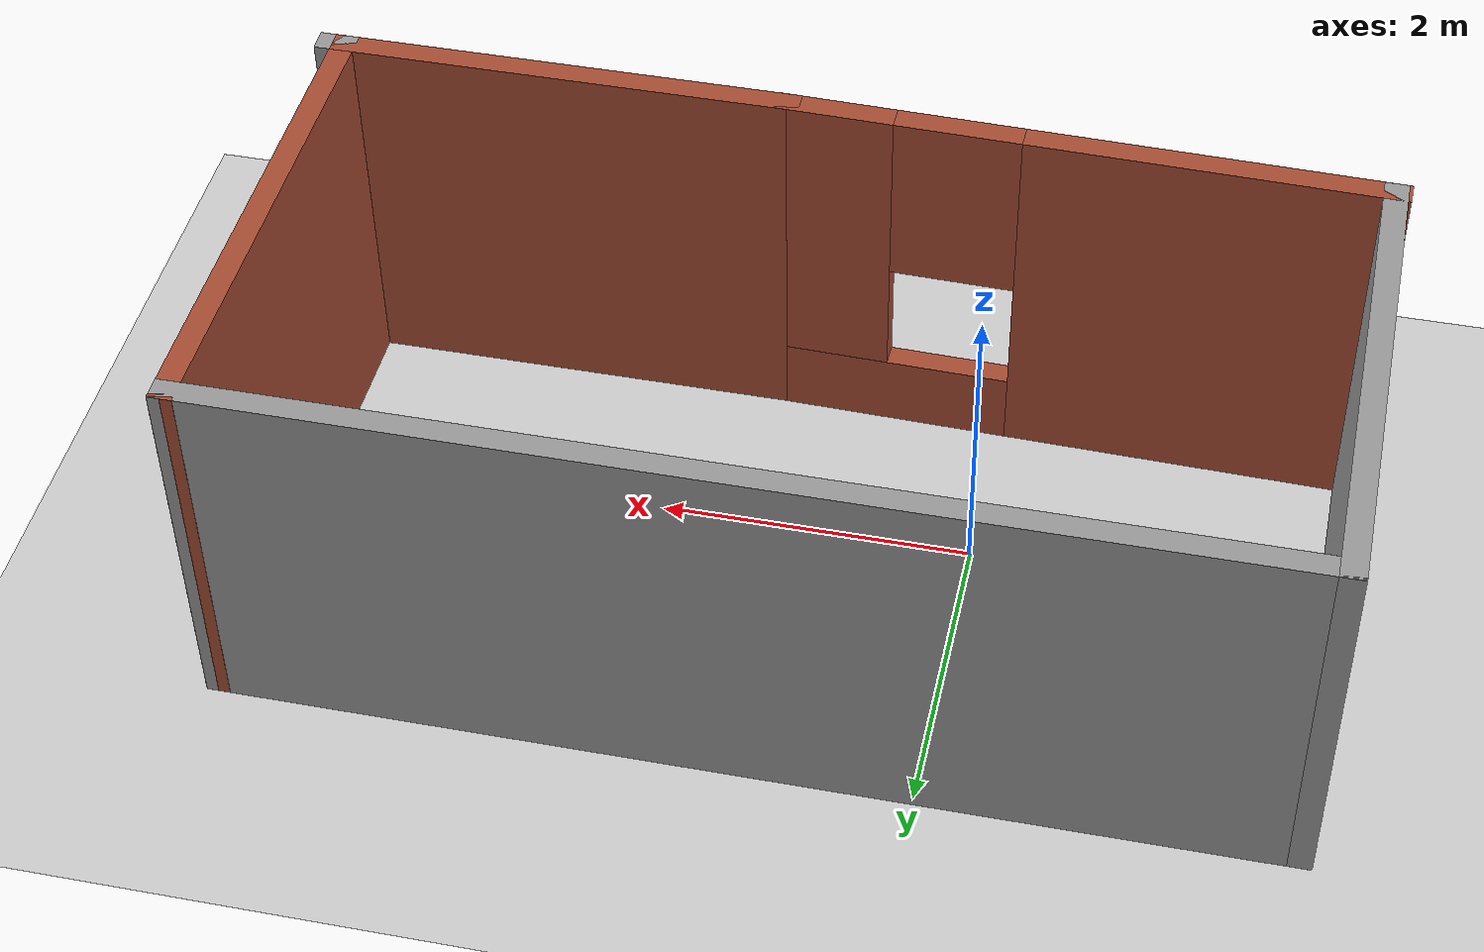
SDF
<sdf version="1.7">
 <world name="default">
  <light name="sun" type="directional">
   <pose>0 0 10 0 -0 0</pose>
   <diffuse>0.8 0.8 0.8 1</diffuse>
   <specular>0.2 0.2 0.2 1</specular>
   <attenuation>
    <range>1000</range>
    <constant>0.9</constant>
    <linear>0.01</linear>
    <quadratic>0.001</quadratic>
   </attenuation>
   <direction>-0.5 0.1 -0.9</direction>
   <spot><inner_angle>0</inner_angle><outer_angle>0</outer_angle><falloff>0</falloff></spot>
  </light>
  <model name="ground_plane">
   <static>1</static>
   <link name="link">
    <collision name="collision">
     <geometry><plane><normal>0 0 1</normal><size>100 100</size></plane></geometry>
     <surface>
      <contact><collide_bitmask>65535</collide_bitmask></contact>
      <friction><ode><mu>100</mu><mu2>50</mu2></ode></friction>
     </surface>
    </collision>
    <visual name="visual">
     <cast_shadows>0</cast_shadows>
     <geometry><plane><normal>0 0 1</normal><size>100 100</size></plane></geometry>
     <material>
      <script><uri>file://media/materials/scripts/gazebo.material</uri><name>Gazebo/Grey</name></script>
     </material>
    </visual>
   </link>
  </model>
  <gravity>0 0 -9.8</gravity>
  <magnetic_field>6e-06 2.3e-05 -4.2e-05</magnetic_field>
  <atmosphere type="adiabatic"/>
  <physics type="ode">
   <max_step_size>0.001</max_step_size>
   <real_time_factor>1</real_time_factor>
   <real_time_update_rate>1000</real_time_update_rate>
  </physics>
  <scene><ambient>0.4 0.4 0.4 1</ambient><background>0.7 0.7 0.7 1</background><shadows>1</shadows></scene>
  <audio><device>default</device></audio>
  <spherical_coordinates>
   <surface_model>EARTH_WGS84</surface_model>
   <latitude_deg>0</latitude_deg>
   <longitude_deg>0</longitude_deg>
   <elevation>0</elevation>
   <heading_deg>0</heading_deg>
  </spherical_coordinates>
  <model name="cabinet">
   <static>1</static>
   <link name="cabinet_bottom_plate">
    <inertial>
     <pose>0 0 -1 0 -0 0</pose>
     <inertia><ixx>2.05</ixx><ixy>0</ixy><ixz>0</ixz><iyy>2.05</iyy><iyz>0</iyz><izz>2.05</izz></inertia>
     <mass>25</mass>
    </inertial>
    <collision name="cabinet_bottom_plate_geom">
     <pose>0 0 0.01 0 -0 0</pose>
     <geometry><box><size>0.45 0.45 0.02</size></box></geometry>
    </collision>
    <visual name="cabinet_bottom_plate_geom_visual">
     <pose>0 0 0.01 0 -0 0</pose>
     <geometry><box><size>0.45 0.45 0.02</size></box></geometry>
     <material>
      <script><uri>file://media/materials/scripts/gazebo.material</uri><name>Gazebo/Wood</name></script>
     </material>
    </visual>
    <collision name="cabinet_bottom_plate_geom_cabinet_back_plate">
     <pose>0.235 0 0.51 0 -0 0</pose>
     <geometry><box><size>0.02 0.45 1.02</size></box></geometry>
    </collision>
    <visual name="cabinet_bottom_plate_geom_cabinet_back_plate_visual">
     <pose>0.235 0 0.51 0 -0 0</pose>
     <geometry><box><size>0.02 0.45 1.02</size></box></geometry>
     <material>
      <script><uri>file://media/materials/scripts/gazebo.material</uri><name>Gazebo/Wood</name></script>
     </material>
    </visual>
    <collision name="cabinet_bottom_plate_geom_cabinet_left_plate">
     <pose>0 0.235 0.51 0 -0 0</pose>
     <geometry><box><size>0.45 0.02 1.02</size></box></geometry>
    </collision>
    <visual name="cabinet_bottom_plate_geom_cabinet_left_plate_visual">
     <pose>0 0.235 0.51 0 -0 0</pose>
     <geometry><box><size>0.45 0.02 1.02</size></box></geometry>
     <material>
      <script><uri>file://media/materials/scripts/gazebo.material</uri><name>Gazebo/Wood</name></script>
     </material>
    </visual>
    <collision name="cabinet_bottom_plate_geom_cabinet_middle_plate">
     <pose>0 0 0.51 0 -0 0</pose>
     <geometry><box><size>0.45 0.45 0.02</size></box></geometry>
    </collision>
    <visual name="cabinet_bottom_plate_geom_cabinet_middle_plate_visual">
     <pose>0 0 0.51 0 -0 0</pose>
     <geometry><box><size>0.45 0.45 0.02</size></box></geometry>
     <material>
      <script><uri>file://media/materials/scripts/gazebo.material</uri><name>Gazebo/Wood</name></script>
     </material>
    </visual>
    <collision name="cabinet_bottom_plate_geom_cabinet_right_plate">
     <pose>0 -0.235 0.51 0 -0 0</pose>
     <geometry><box><size>0.45 0.02 1.02</size></box></geometry>
    </collision>
    <visual name="cabinet_bottom_plate_geom_cabinet_right_plate_visual">
     <pose>0 -0.235 0.51 0 -0 0</pose>
     <geometry><box><size>0.45 0.02 1.02</size></box></geometry>
     <material>
      <script><uri>file://media/materials/scripts/gazebo.material</uri><name>Gazebo/Wood</name></script>
     </material>
    </visual>
    <collision name="cabinet_bottom_plate_geom_cabinet_top_plate">
     <pose>0 0 1.01 0 -0 0</pose>
     <geometry><box><size>0.45 0.45 0.02</size></box></geometry>
    </collision>
    <visual name="cabinet_bottom_plate_geom_cabinet_top_plate_visual">
     <pose>0 0 1.01 0 -0 0</pose>
     <geometry><box><size>0.45 0.45 0.02</size></box></geometry>
     <material>
      <script><uri>file://media/materials/scripts/gazebo.material</uri><name>Gazebo/Wood</name></script>
     </material>
    </visual>
   </link>
   <pose>0.420435 1.21126 0 0 -0 0</pose>
  </model>
  <model name="beer">
   <link name="link">
    <pose>0 0 0.115 0 -0 0</pose>
    <inertial>
     <mass>0.39</mass>
     <inertia><ixx>0.00058</ixx><ixy>0</ixy><ixz>0</ixz><iyy>0.00058</iyy><iyz>0</iyz><izz>0.00019</izz></inertia>
    </inertial>
    <collision name="collision">
     <geometry><cylinder><radius>0.055</radius><length>0.23</length></cylinder></geometry>
    </collision>
    <visual name="visual">
     <geometry><cylinder><radius>0.055</radius><length>0.23</length></cylinder></geometry>
     <material>
      <script>
       <uri>model://beer/materials/scripts</uri>
       <uri>model://beer/materials/textures</uri>
       <name>Beer/Diffuse</name>
      </script>
     </material>
    </visual>
   </link>
   <pose>2.24246 1.05455 -2e-06 1e-06 -0 0.002861</pose>
  </model>
  <model name="test">
   <pose>1.03639 0.66776 0 0 -0 0</pose>
   <link name="Wall_10">
    <pose>-1.47411 -1.83661 0 0 -0 -0.02406</pose>
    <visual name="Wall_10_Visual_0">
     <pose>-0.77439 0 1.25 0 -0 0</pose>
     <geometry><box><size>2.3423 0.15 2.5</size></box></geometry>
     <material>
      <script><uri>file://media/materials/scripts/gazebo.material</uri><name>Gazebo/Bricks</name></script>
      <ambient>1 1 1 1</ambient>
     </material>
     <meta><layer>0</layer></meta>
    </visual>
    <collision name="Wall_10_Collision_0">
     <geometry><box><size>2.3423 0.15 2.5</size></box></geometry>
     <pose>-0.77439 0 1.25 0 -0 0</pose>
    </collision>
    <visual name="Wall_10_Visual_1">
     <pose>1.17115 0 0.25 0 -0 0</pose>
     <geometry><box><size>1.54878 0.15 0.5</size></box></geometry>
     <material>
      <script><uri>file://media/materials/scripts/gazebo.material</uri><name>Gazebo/Bricks</name></script>
      <ambient>1 1 1 1</ambient>
     </material>
     <meta><layer>0</layer></meta>
    </visual>
    <collision name="Wall_10_Collision_1">
     <geometry><box><size>1.54878 0.15 0.5</size></box></geometry>
     <pose>1.17115 0 0.25 0 -0 0</pose>
    </collision>
    <visual name="Wall_10_Visual_2">
     <pose>1.57115 0 1.5 0 -0 0</pose>
     <geometry><box><size>0.74878 0.15 2</size></box></geometry>
     <material>
      <script><uri>file://media/materials/scripts/gazebo.material</uri><name>Gazebo/Bricks</name></script>
      <ambient>1 1 1 1</ambient>
     </material>
     <meta><layer>0</layer></meta>
    </visual>
    <collision name="Wall_10_Collision_2">
     <geometry><box><size>0.74878 0.15 2</size></box></geometry>
     <pose>1.57115 0 1.5 0 -0 0</pose>
    </collision>
    <visual name="Wall_10_Visual_3">
     <pose>0.796761 0 1.9 0 -0 0</pose>
     <geometry><box><size>0.8 0.15 1.2</size></box></geometry>
     <material>
      <script><uri>file://media/materials/scripts/gazebo.material</uri><name>Gazebo/Bricks</name></script>
      <ambient>1 1 1 1</ambient>
     </material>
     <meta><layer>0</layer></meta>
    </visual>
    <collision name="Wall_10_Collision_3">
     <geometry><box><size>0.8 0.15 1.2</size></box></geometry>
     <pose>0.796761 0 1.9 0 -0 0</pose>
    </collision>
   </link>
   <link name="Wall_11">
    <collision name="Wall_11_Collision">
     <geometry><box><size>3 0.15 2.5</size></box></geometry>
     <pose>0 0 1.25 0 -0 0</pose>
    </collision>
    <visual name="Wall_11_Visual">
     <pose>0 0 1.25 0 -0 0</pose>
     <geometry><box><size>3 0.15 2.5</size></box></geometry>
     <material>
      <script><uri>file://media/materials/scripts/gazebo.material</uri><name>Gazebo/Bricks</name></script>
      <ambient>1 1 1 1</ambient>
     </material>
     <meta><layer>0</layer></meta>
    </visual>
    <pose>1.82089 -1.88161 0 0 -0 0</pose>
   </link>
   <link name="Wall_12">
    <collision name="Wall_12_Collision">
     <geometry><box><size>0.25 0.15 2.5</size></box></geometry>
     <pose>0 0 1.25 0 -0 0</pose>
    </collision>
    <visual name="Wall_12_Visual">
     <pose>0 0 1.25 0 -0 0</pose>
     <geometry><box><size>0.25 0.15 2.5</size></box></geometry>
     <material>
      <script><uri>file://media/materials/scripts/gazebo.material</uri><name>Gazebo/Grey</name></script>
      <ambient>1 1 1 1</ambient>
     </material>
     <meta><layer>0</layer></meta>
    </visual>
    <pose>3.29589 -1.88161 0 0 -0 0</pose>
   </link>
   <link name="Wall_14">
    <collision name="Wall_14_Collision">
     <geometry><box><size>6.75 0.15 2.5</size></box></geometry>
     <pose>0 0 1.25 0 -0 0</pose>
    </collision>
    <visual name="Wall_14_Visual">
     <pose>0 0 1.25 0 -0 0</pose>
     <geometry><box><size>6.75 0.15 2.5</size></box></geometry>
     <material>
      <script><uri>file://media/materials/scripts/gazebo.material</uri><name>Gazebo/Grey</name></script>
      <ambient>1 1 1 1</ambient>
     </material>
     <meta><layer>0</layer></meta>
    </visual>
    <pose>-0.024109 1.30839 0 0 -0 0</pose>
   </link>
   <link name="Wall_15">
    <collision name="Wall_15_Collision">
     <geometry><box><size>3.34014 0.15 2.5</size></box></geometry>
     <pose>0 0 1.25 0 -0 0</pose>
    </collision>
    <visual name="Wall_15_Visual">
     <pose>0 0 1.25 0 -0 0</pose>
     <geometry><box><size>3.34014 0.15 2.5</size></box></geometry>
     <material>
      <script><uri>file://media/materials/scripts/gazebo.material</uri><name>Gazebo/Bricks</name></script>
      <ambient>1 1 1 1</ambient>
     </material>
     <meta><layer>0</layer></meta>
    </visual>
    <pose>3.26089 -0.286609 0 0 -0 -1.5802</pose>
   </link>
   <link name="Wall_9">
    <collision name="Wall_9_Collision">
     <geometry><box><size>3.25 0.15 2.5</size></box></geometry>
     <pose>0 0 1.25 0 -0 0</pose>
    </collision>
    <visual name="Wall_9_Visual">
     <pose>0 0 1.25 0 -0 0</pose>
     <geometry><box><size>3.25 0.15 2.5</size></box></geometry>
     <material>
      <script><uri>file://media/materials/scripts/gazebo.material</uri><name>Gazebo/Grey</name></script>
      <ambient>1 1 1 1</ambient>
     </material>
     <meta><layer>0</layer></meta>
    </visual>
    <pose>-3.32411 -0.241609 0 0 -0 -1.5708</pose>
   </link>
   <static>1</static>
  </model>
 </world>
</sdf>
